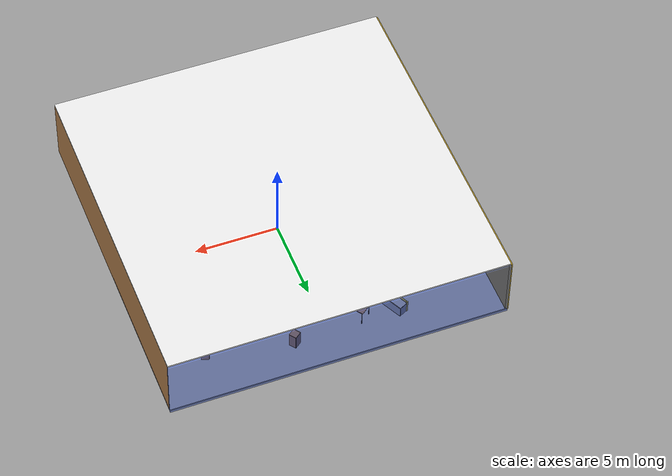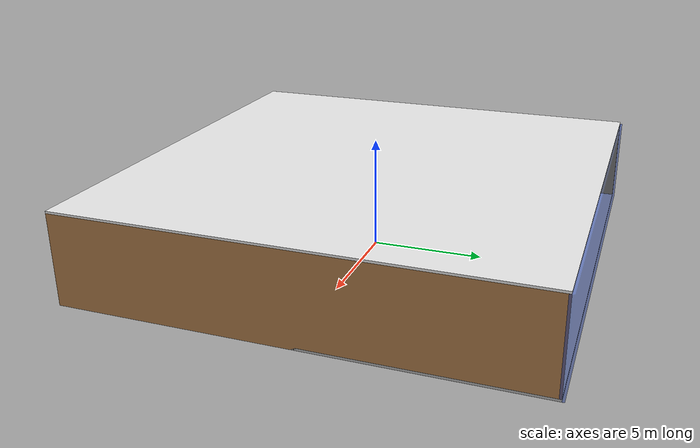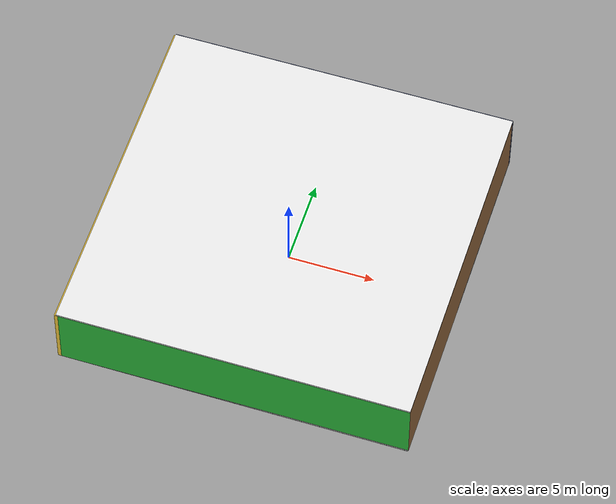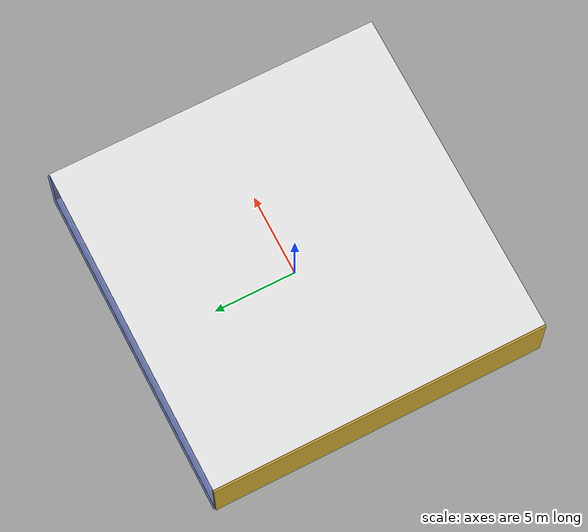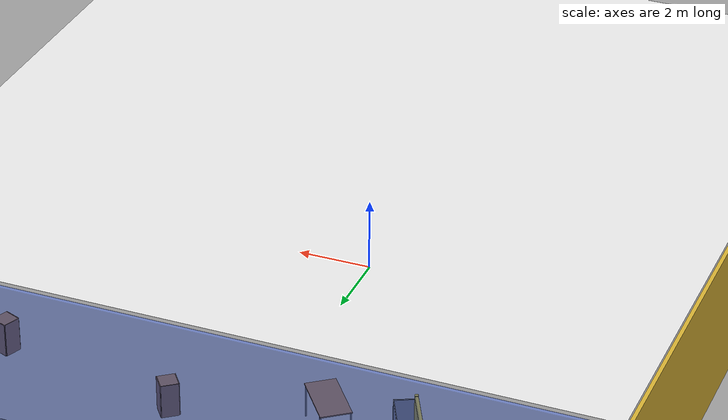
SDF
<sdf version="1.4">
 <world name="default">
  <physics type="ode">
   <max_step_size>0.001</max_step_size>
   <real_time_factor>1</real_time_factor>
   <real_time_update_rate>1000</real_time_update_rate>
   <gravity>0 0 -9.8</gravity>
  </physics>
  <scene><ambient>0.4 0.4 0.4 1</ambient><background>0.7 0.7 0.7 1</background><shadows>1</shadows></scene>
  <model name="Surrounding">
   <static>1</static>
   <link name="Ceiling">
    <collision name="Ceiling_Collision"><geometry><box><size>20 20 0.1</size></box></geometry></collision>
    <visual name="Ceiling_Visual">
     <geometry><box><size>20 20 0.1</size></box></geometry>
     <material>
      <script><uri>file://media/materials/scripts/gazebo.material</uri><name>Gazebo/WhiteGlow</name></script>
     </material>
    </visual>
    <pose>0 0 4.05 0 0 0</pose>
   </link>
   <link name="Wall_South">
    <collision name="Wall_South_Collision">
     <geometry><box><size>20 0 4</size></box></geometry>
     <pose>0 0 2 0 -0 0</pose>
    </collision>
    <visual name="Wall_South_Visual">
     <pose>0 0 2 0 -0 0</pose>
     <geometry><box><size>20 0 4</size></box></geometry>
     <material>
      <script><uri>file://media/materials/scripts/gazebo.material</uri><name>Gazebo/GreenGlow</name></script>
     </material>
    </visual>
    <velocity_decay><linear>0</linear><angular>0</angular></velocity_decay>
    <pose>0 -10 0 0 -0 0</pose>
   </link>
   <link name="Wall_East">
    <collision name="Wall_21_Collision">
     <geometry><box><size>20 0 4</size></box></geometry>
     <pose>0 0 2 0 -0 0</pose>
    </collision>
    <visual name="Wall_21_Visual">
     <pose>0 0 2 0 -0 0</pose>
     <geometry><box><size>20 0 4</size></box></geometry>
     <material>
      <script><uri>file://media/materials/scripts/gazebo.material</uri><name>Gazebo/WoodFloor</name></script>
     </material>
    </visual>
    <velocity_decay><linear>0</linear><angular>0</angular></velocity_decay>
    <pose>10 0 0 0 -0 1.5708</pose>
   </link>
   <link name="Wall_North">
    <collision name="Wall_22_Collision">
     <geometry><box><size>20 0.2 4</size></box></geometry>
     <pose>0 0 2 0 -0 0</pose>
    </collision>
    <visual name="Wall_22_Visual">
     <pose>0 0 2 0 -0 0</pose>
     <geometry><box><size>20 0.2 4</size></box></geometry>
     <material>
      <script><uri>file://media/materials/scripts/gazebo.material</uri><name>Gazebo/BlueTransparent</name></script>
     </material>
    </visual>
    <velocity_decay><linear>0</linear><angular>0</angular></velocity_decay>
    <pose>0 10 0 0 -0 0</pose>
   </link>
   <link name="Wall_West">
    <collision name="Wall_23_Collision">
     <geometry><box><size>20 0.2 4</size></box></geometry>
     <pose>0 0 2 0 -0 0</pose>
    </collision>
    <visual name="Wall_23_Visual">
     <pose>0 0 2 0 -0 0</pose>
     <geometry><box><size>20 0.2 4</size></box></geometry>
     <material>
      <script><uri>file://media/materials/scripts/gazebo.material</uri><name>Gazebo/Gold</name></script>
     </material>
    </visual>
    <velocity_decay><linear>0</linear><angular>0</angular></velocity_decay>
    <pose>-10 0 0 0 0 -1.5708</pose>
   </link>
   <link name="Ground_link">
    <collision name="collision">
     <pose>0 0 .05 0 -0 0</pose>
     <geometry><box><size>20 20 0.1</size></box></geometry>
    </collision>
    <visual name="visual">
     <pose>0 0 .05 0 -0 0</pose>
     <geometry><box><size>20 20 0.1</size></box></geometry>
     <material>
      <script><uri>file://media/materials/scripts/gazebo.material</uri><name>Gazebo/LightOff</name></script>
     </material>
    </visual>
   </link>
   <static>1</static>
  </model>
  <spherical_coordinates>
   <surface_model>EARTH_WGS84</surface_model>
   <latitude_deg>0</latitude_deg>
   <longitude_deg>0</longitude_deg>
   <elevation>0</elevation>
   <heading_deg>0</heading_deg>
  </spherical_coordinates>
  <light name="lightball_0" type="diffuse">
   <diffuse>0.8 0.8 0.8 1</diffuse>
   <specular>0.2 0.2 0.2 1</specular>
   <attenuation>
    <range>100</range>
    <constant>0.7</constant>
    <linear>0.01</linear>
    <quadratic>0.001</quadratic>
   </attenuation>
   <direction>-0.5 0.1 -0.9</direction>
   <pose>6.20733055664 -8.18353514371 2.31500896675 0 0 0</pose>
  </light>
  <light name="lightball_1" type="diffuse">
   <diffuse>0.8 0.8 0.8 1</diffuse>
   <specular>0.2 0.2 0.2 1</specular>
   <attenuation>
    <range>100</range>
    <constant>0.7</constant>
    <linear>0.01</linear>
    <quadratic>0.001</quadratic>
   </attenuation>
   <direction>-0.5 0.1 -0.9</direction>
   <pose>3.17761211663 -9.30182266241 0.719399558362 0 0 0</pose>
  </light>
  <light name="lightball_2" type="diffuse">
   <diffuse>0.8 0.8 0.8 1</diffuse>
   <specular>0.2 0.2 0.2 1</specular>
   <attenuation>
    <range>100</range>
    <constant>0.7</constant>
    <linear>0.01</linear>
    <quadratic>0.001</quadratic>
   </attenuation>
   <direction>-0.5 0.1 -0.9</direction>
   <pose>4.57719909963 3.50678921517 3.84404526484 0 0 0</pose>
  </light>
  <light name="lightball_3" type="diffuse">
   <diffuse>0.8 0.8 0.8 1</diffuse>
   <specular>0.2 0.2 0.2 1</specular>
   <attenuation>
    <range>100</range>
    <constant>0.7</constant>
    <linear>0.01</linear>
    <quadratic>0.001</quadratic>
   </attenuation>
   <direction>-0.5 0.1 -0.9</direction>
   <pose>6.24256492197 1.10457337666 0.73191109036 0 0 0</pose>
  </light>
  <light name="lightball_4" type="diffuse">
   <diffuse>0.8 0.8 0.8 1</diffuse>
   <specular>0.2 0.2 0.2 1</specular>
   <attenuation>
    <range>100</range>
    <constant>0.7</constant>
    <linear>0.01</linear>
    <quadratic>0.001</quadratic>
   </attenuation>
   <direction>-0.5 0.1 -0.9</direction>
   <pose>7.59234013204 9.63164107112 1.93978269722 0 0 0</pose>
  </light>
  <light name="lightball_5" type="diffuse">
   <diffuse>0.8 0.8 0.8 1</diffuse>
   <specular>0.2 0.2 0.2 1</specular>
   <attenuation>
    <range>100</range>
    <constant>0.7</constant>
    <linear>0.01</linear>
    <quadratic>0.001</quadratic>
   </attenuation>
   <direction>-0.5 0.1 -0.9</direction>
   <pose>-6.79561564863 6.11836255487 2.6565354264 0 0 0</pose>
  </light>
  <light name="lightball_6" type="diffuse">
   <diffuse>0.8 0.8 0.8 1</diffuse>
   <specular>0.2 0.2 0.2 1</specular>
   <attenuation>
    <range>100</range>
    <constant>0.7</constant>
    <linear>0.01</linear>
    <quadratic>0.001</quadratic>
   </attenuation>
   <direction>-0.5 0.1 -0.9</direction>
   <pose>4.05748513424 7.32161454835 0.528670117322 0 0 0</pose>
  </light>
  <light name="lightball_7" type="diffuse">
   <diffuse>0.8 0.8 0.8 1</diffuse>
   <specular>0.2 0.2 0.2 1</specular>
   <attenuation>
    <range>100</range>
    <constant>0.7</constant>
    <linear>0.01</linear>
    <quadratic>0.001</quadratic>
   </attenuation>
   <direction>-0.5 0.1 -0.9</direction>
   <pose>0.102722171447 5.36613285563 1.20867252827 0 0 0</pose>
  </light>
  <light name="lightball_8" type="diffuse">
   <diffuse>0.8 0.8 0.8 1</diffuse>
   <specular>0.2 0.2 0.2 1</specular>
   <attenuation>
    <range>100</range>
    <constant>0.7</constant>
    <linear>0.01</linear>
    <quadratic>0.001</quadratic>
   </attenuation>
   <direction>-0.5 0.1 -0.9</direction>
   <pose>-5.50089639061 8.37636618998 1.55229602855 0 0 0</pose>
  </light>
  <light name="lightball_9" type="diffuse">
   <diffuse>0.8 0.8 0.8 1</diffuse>
   <specular>0.2 0.2 0.2 1</specular>
   <attenuation>
    <range>100</range>
    <constant>0.7</constant>
    <linear>0.01</linear>
    <quadratic>0.001</quadratic>
   </attenuation>
   <direction>-0.5 0.1 -0.9</direction>
   <pose>8.69991129964 0.861876644953 3.5701245332 0 0 0</pose>
  </light>
  <include>
   <uri>model://robocup_3Dsim_goal</uri>
   <pose>-4.21399000459 7.25742428503 0 0 0 0.463673728651</pose>
  </include>
  <include><uri>model://table</uri><pose>-1.75588278542 -7.56736047988 0 0 0 1.72448472522</pose></include>
  <include><uri>model://table</uri><pose>-1.52184274595 -4.29097148089 0 0 0 2.55882574097</pose></include>
  <include><uri>model://table</uri><pose>-1.87307374003 7.37798176147 0 0 0 2.22578210076</pose></include>
  <include>
   <uri>model://robocup_3Dsim_goal</uri>
   <pose>1.50336794968 0.774876751119 0 0 0 2.52228008679</pose>
  </include>
  <include><uri>model://cabinet</uri><pose>2.02152927459 8.15945340228 0 0 0 2.22450319314</pose></include>
  <include><uri>model://cabinet</uri><pose>7.19778557723 0.937142977343 0 0 0 0.632805828914</pose></include>
  <include><uri>model://cabinet</uri><pose>6.9566117441 7.22198723789 0 0 0 2.76823507199</pose></include>
 </world>
</sdf>

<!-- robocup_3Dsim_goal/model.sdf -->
<sdf version="1.5">
  <model name="robocup_3d_goal">
    <static>true</static>
    <link name="left_post">
      <pose>0 1.05 0.45 0 0 0</pose>
      <collision name="collision">
        <geometry>
          <cylinder>
            <radius>0.05</radius>
            <length>0.9</length>
          </cylinder>
        </geometry>
      </collision>
      <visual name="visual">
        <geometry>
          <cylinder>
            <radius>0.05</radius>
            <length>0.9</length>
          </cylinder>
        </geometry>
        <material>
          <script>
            <uri>file://media/materials/scripts/gazebo.material</uri>
            <name>Gazebo/ZincYellow</name>
          </script>
        </material>
      </visual>
    </link>
    <link name="left_support_horiz_lower">
      <pose>0.30 1.05 0.01 0 0 0</pose>
      <collision name="collision">
        <geometry>
          <box>
            <size>0.50 0.02 0.02</size>
          </box>
        </geometry>
      </collision>
      <visual name="visual">
        <geometry>
          <box>
            <size>0.50 0.02 0.02</size>
          </box>
        </geometry>
        <material>
          <script>
            <uri>file://media/materials/scripts/gazebo.material</uri>
            <name>Gazebo/White</name>
          </script>
        </material>
      </visual>
    </link>
    <link name="left_support_horiz_upper">
      <pose>0.30 1.05 0.79 0 0 0</pose>
      <collision name="collision">
        <geometry>
          <box>
            <size>0.50 0.02 0.02</size>
          </box>
        </geometry>
      </collision>
      <visual name="visual">
        <geometry>
          <box>
            <size>0.50 0.02 0.02</size>
          </box>
        </geometry>
        <material>
          <script>
            <uri>file://media/materials/scripts/gazebo.material</uri>
            <name>Gazebo/White</name>
          </script>
        </material>
      </visual>
    </link>
    <link name="left_support_vertical">
      <pose>0.56 1.05 0.4 0 1.5708 0</pose>
      <collision name="collision">
        <geometry>
          <box>
            <size>0.80 0.02 0.02</size>
          </box>
        </geometry>
      </collision>
      <visual name="visual">
        <geometry>
          <box>
            <size>0.80 0.02 0.02</size>
          </box>
        </geometry>
        <material>
          <script>
            <uri>file://media/materials/scripts/gazebo.material</uri>
            <name>Gazebo/White</name>
          </script>
        </material>
      </visual>
    </link>
    <link name="right_support_horiz_lower">
      <pose>0.30 -1.05 0.01 0 0 0</pose>
      <collision name="collision">
        <geometry>
          <box>
            <size>0.50 0.02 0.02</size>
          </box>
        </geometry>
      </collision>
      <visual name="visual">
        <geometry>
          <box>
            <size>0.50 0.02 0.02</size>
          </box>
        </geometry>
        <material>
          <script>
            <uri>file://media/materials/scripts/gazebo.material</uri>
            <name>Gazebo/White</name>
          </script>
        </material>
      </visual>
    </link>
    <link name="right_support_horiz_upper">
      <pose>0.30 -1.05 0.79 0 0 0</pose>
      <collision name="collision">
        <geometry>
          <box>
            <size>0.50 0.02 0.02</size>
          </box>
        </geometry>
      </collision>
      <visual name="visual">
        <geometry>
          <box>
            <size>0.50 0.02 0.02</size>
          </box>
        </geometry>
        <material>
          <script>
            <uri>file://media/materials/scripts/gazebo.material</uri>
            <name>Gazebo/White</name>
          </script>
        </material>
      </visual>
    </link>
    <link name="right_support_vertical">
      <pose>0.56 -1.05 0.4 0 1.5708 0</pose>
      <collision name="collision">
        <geometry>
          <box>
            <size>0.80 0.02 0.02</size>
          </box>
        </geometry>
      </collision>
      <visual name="visual">
        <geometry>
          <box>
            <size>0.80 0.02 0.02</size>
          </box>
        </geometry>
        <material>
          <script>
            <uri>file://media/materials/scripts/gazebo.material</uri>
            <name>Gazebo/White</name>
          </script>
        </material>
      </visual>
    </link>
    <link name="center_support_horiz_lower">
      <pose>0.56 0 0.01 0 1.5708 0</pose>
      <collision name="collision">
        <geometry>
          <box>
            <size>0.02 2.08 0.02</size>
          </box>
        </geometry>
      </collision>
      <visual name="visual">
        <geometry>
          <box>
            <size>0.02 2.08 0.02</size>
          </box>
        </geometry>
        <material>
          <script>
            <uri>file://media/materials/scripts/gazebo.material</uri>
            <name>Gazebo/White</name>
          </script>
        </material>
      </visual>
    </link>
    <link name="center_support_horiz_upper">
      <pose>0.56 0 0.79 0 1.5708 0</pose>
      <collision name="collision">
        <geometry>
          <box>
            <size>0.02 2.08 0.02</size>
          </box>
        </geometry>
      </collision>
      <visual name="visual">
        <geometry>
          <box>
            <size>0.02 2.08 0.02</size>
          </box>
        </geometry>
        <material>
          <script>
            <uri>file://media/materials/scripts/gazebo.material</uri>
            <name>Gazebo/White</name>
          </script>
        </material>
      </visual>
    </link>
    <link name="right_post">
      <pose>0 -1.05 0.45 0 0 0</pose>
      <collision name="collision">
        <geometry>
          <cylinder>
            <radius>0.05</radius>
            <length>0.9</length>
          </cylinder>
        </geometry>
      </collision>
      <visual name="visual">
        <geometry>
          <cylinder>
            <radius>0.05</radius>
            <length>0.9</length>
          </cylinder>
        </geometry>
        <material>
          <script>
            <uri>file://media/materials/scripts/gazebo.material</uri>
            <name>Gazebo/ZincYellow</name>
          </script>
        </material>
      </visual>
    </link>
    <link name="crossbar">
      <pose>0 0 0.85 1.57 1.57 0</pose>
      <collision name="collision">
        <geometry>
          <cylinder>
            <radius>0.05</radius>
            <length>2.0</length>
          </cylinder>
        </geometry>
      </collision>
      <visual name="visual">
        <geometry>
          <cylinder>
            <radius>0.05</radius>
            <length>2.0</length>
          </cylinder>
        </geometry>
        <material>
          <script>
            <uri>file://media/materials/scripts/gazebo.material</uri>
            <name>Gazebo/ZincYellow</name>
          </script>
        </material>
      </visual>
    </link>
    <link name="center_net">
      <pose>0.56 0 0.40 0 0 0</pose>
      <collision name="collision">
        <geometry>
          <box>
            <size>0.01 2.1 0.80</size>
          </box>
        </geometry>
      </collision>
      <visual name="visual">
        <geometry>
          <box>
            <size>0.01 2.1 0.80</size>
          </box>
        </geometry>
        <material>
          <script>
            <uri>model://../model_source/models/robocup09_spl_field/materials/scripts/</uri>
            <uri>model://../model_source/models/robocup09_spl_field/materials/textures/</uri>
            <name>RoboCup/Net</name>
          </script>
        </material>
      </visual>
    </link>
    <link name="left_net">
      <pose>0.30 1.05 0.40 0 0 0</pose>
      <collision name="collision">
        <geometry>
          <box>
            <size>0.50 0.01 0.76</size>
          </box>
        </geometry>
      </collision>
      <visual name="visual">
        <geometry>
          <box>
            <size>0.50 0.01 0.76</size>
          </box>
        </geometry>
        <material>
          <script>
            <uri>model://../model_source/models/robocup09_spl_field/materials/scripts/</uri>
            <uri>model://../model_source/models/robocup09_spl_field/materials/textures/</uri>
            <name>RoboCup/Net</name>
          </script>
        </material>
      </visual>
    </link>
    <link name="right_net">
      <pose>0.30 -1.05 0.40 0 0 0</pose>
      <collision name="collision">
        <geometry>
          <box>
            <size>0.50 0.01 0.76</size>
          </box>
        </geometry>
      </collision>
      <visual name="visual">
        <geometry>
          <box>
            <size>0.50 0.01 0.76</size>
          </box>
        </geometry>
        <material>
          <script>
            <uri>model://../model_source/models/robocup09_spl_field/materials/scripts/</uri>
            <uri>model://../model_source/models/robocup09_spl_field/materials/textures/</uri>
            <name>RoboCup/Net</name>
          </script>
        </material>
      </visual>
    </link>
  </model>
</sdf>

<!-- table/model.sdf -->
<sdf version="1.5">
  <model name="table">
    <static>true</static>
    <link name="link">
      <collision name="surface">
        <pose>0 0 1.0 0 0 0</pose>
        <geometry>
          <box>
            <size>1.5 0.8 0.03</size>
          </box>
        </geometry>
        <surface>
          <friction>
            <ode>
              <mu>0.6</mu>
              <mu2>0.6</mu2>
            </ode>
          </friction>
        </surface>
      </collision>
      <visual name="visual1">
        <pose>0 0 1.0 0 0 0</pose>
        <geometry>
          <box>
            <size>1.5 0.8 0.03</size>
          </box>
        </geometry>
        <material>
          <script>
            <uri>model://media/materials/scripts/gazebo.material</uri>
            <name>Gazebo/Wood</name>
          </script>
        </material>
      </visual>
      <collision name="front_left_leg">
        <pose>0.68 0.38 0.5 0 0 0</pose>
        <geometry>
          <cylinder>
            <radius>0.02</radius>
            <length>1.0</length>
          </cylinder>
        </geometry>
      </collision>
      <visual name="front_left_leg">
        <pose>0.68 0.38 0.5 0 0 0</pose>
        <geometry>
          <cylinder>
            <radius>0.02</radius>
            <length>1.0</length>
          </cylinder>
        </geometry>
        <material>
          <script>
            <uri>model://media/materials/scripts/gazebo.material</uri>
            <name>Gazebo/Grey</name>
          </script>
        </material>
      </visual>
      <collision name="front_right_leg">
        <pose>0.68 -0.38 0.5 0 0 0</pose>
        <geometry>
          <cylinder>
            <radius>0.02</radius>
            <length>1.0</length>
          </cylinder>
        </geometry>
      </collision>
      <visual name="front_right_leg">
        <pose>0.68 -0.38 0.5 0 0 0</pose>
        <geometry>
          <cylinder>
            <radius>0.02</radius>
            <length>1.0</length>
          </cylinder>
        </geometry>
        <material>
          <script>
            <uri>model://media/materials/scripts/gazebo.material</uri>
            <name>Gazebo/Grey</name>
          </script>
        </material>
      </visual>
      <collision name="back_right_leg">
        <pose>-0.68 -0.38 0.5 0 0 0</pose>
        <geometry>
          <cylinder>
            <radius>0.02</radius>
            <length>1.0</length>
          </cylinder>
        </geometry>
      </collision>
      <visual name="back_right_leg">
        <pose>-0.68 -0.38 0.5 0 0 0</pose>
        <geometry>
          <cylinder>
            <radius>0.02</radius>
            <length>1.0</length>
          </cylinder>
        </geometry>
        <material>
          <script>
            <uri>model://media/materials/scripts/gazebo.material</uri>
            <name>Gazebo/Grey</name>
          </script>
        </material>
      </visual>
      <collision name="back_left_leg">
        <pose>-0.68 0.38 0.5 0 0 0</pose>
        <geometry>
          <cylinder>
            <radius>0.02</radius>
            <length>1.0</length>
          </cylinder>
        </geometry>
      </collision>
      <visual name="back_left_leg">
        <pose>-0.68 0.38 0.5 0 0 0</pose>
        <geometry>
          <cylinder>
            <radius>0.02</radius>
            <length>1.0</length>
          </cylinder>
        </geometry>
        <material>
          <script>
            <uri>model://media/materials/scripts/gazebo.material</uri>
            <name>Gazebo/Grey</name>
          </script>
        </material>
      </visual>
    </link>
  </model>
</sdf>

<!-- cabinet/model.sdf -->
<sdf version="1.5">
  <model name="cabinet">
    <static>true</static>
    <link name="cabinet_bottom_plate">
      <inertial>
        <pose>0 0 -1 0 0 0</pose>
        <inertia>
          <ixx>2.050000</ixx>
          <ixy>0</ixy>
          <ixz>0</ixz>
          <iyy>2.050000</iyy>
          <iyz>0</iyz>
          <izz>2.050000</izz>
        </inertia>
        <mass>25.000000</mass>
      </inertial>
      <collision name="cabinet_bottom_plate_geom">
        <pose>0 0 0.010000 0 0 0</pose>
        <geometry>
          <box>
            <size>0.450000 0.450000 0.020000</size>
          </box>
        </geometry>
      </collision>
      <visual name="cabinet_bottom_plate_geom_visual">
        <pose>0 0 0.010000 0 0 0</pose>
        <geometry>
          <box>
            <size>0.450000 0.450000 0.020000</size>
          </box>
        </geometry>
        <material>
          <script>
            <uri>model://media/materials/scripts/gazebo.material</uri>
            <name>Gazebo/Wood</name>
          </script>
        </material>
      </visual>
      <collision name="cabinet_bottom_plate_geom_cabinet_back_plate">
        <pose>0.235000 0 0.510000 0 0 0</pose>
        <geometry>
          <box>
            <size>0.020000 0.450000 1.020000</size>
          </box>
        </geometry>
      </collision>
      <visual name="cabinet_bottom_plate_geom_cabinet_back_plate_visual">
        <pose>0.235000 0 0.510000 0 0 0</pose>
        <geometry>
          <box>
            <size>0.020000 0.450000 1.020000</size>
          </box>
        </geometry>
        <material>
          <script>
            <uri>model://media/materials/scripts/gazebo.material</uri>
            <name>Gazebo/Wood</name>
          </script>
        </material>
      </visual>
      <collision name="cabinet_bottom_plate_geom_cabinet_left_plate">
        <pose>0 0.235000 0.510000 0 0 0</pose>
        <geometry>
          <box>
            <size>0.450000 0.020000 1.020000</size>
          </box>
        </geometry>
      </collision>
      <visual name="cabinet_bottom_plate_geom_cabinet_left_plate_visual">
        <pose>0 0.235000 0.510000 0 0 0</pose>
        <geometry>
          <box>
            <size>0.450000 0.020000 1.020000</size>
          </box>
        </geometry>
        <material>
          <script>
            <uri>model://media/materials/scripts/gazebo.material</uri>
            <name>Gazebo/Wood</name>
          </script>
        </material>
      </visual>
      <collision name="cabinet_bottom_plate_geom_cabinet_middle_plate">
        <pose>0 0 0.510000 0 0 0</pose>
        <geometry>
          <box>
            <size>0.450000 0.450000 0.020000</size>
          </box>
        </geometry>
      </collision>
      <visual name="cabinet_bottom_plate_geom_cabinet_middle_plate_visual">
        <pose>0 0 0.510000 0 0 0</pose>
        <geometry>
          <box>
            <size>0.450000 0.450000 0.020000</size>
          </box>
        </geometry>
        <material>
          <script>
            <uri>model://media/materials/scripts/gazebo.material</uri>
            <name>Gazebo/Wood</name>
          </script>
        </material>
      </visual>
      <collision name="cabinet_bottom_plate_geom_cabinet_right_plate">
        <pose>0 -0.235000 0.510000 0 0 0</pose>
        <geometry>
          <box>
            <size>0.450000 0.020000 1.020000</size>
          </box>
        </geometry>
      </collision>
      <visual name="cabinet_bottom_plate_geom_cabinet_right_plate_visual">
        <pose>0 -0.235000 0.510000 0 0 0</pose>
        <geometry>
          <box>
            <size>0.450000 0.020000 1.020000</size>
          </box>
        </geometry>
        <material>
          <script>
            <uri>model://media/materials/scripts/gazebo.material</uri>
            <name>Gazebo/Wood</name>
          </script>
        </material>
      </visual>
      <collision name="cabinet_bottom_plate_geom_cabinet_top_plate">
        <pose>0 0 1.010000 0 0 0</pose>
        <geometry>
          <box>
            <size>0.450000 0.450000 0.020000</size>
          </box>
        </geometry>
      </collision>
      <visual name="cabinet_bottom_plate_geom_cabinet_top_plate_visual">
        <pose>0 0 1.010000 0 0 0</pose>
        <geometry>
          <box>
            <size>0.450000 0.450000 0.020000</size>
          </box>
        </geometry>
        <material>
          <script>
            <uri>model://media/materials/scripts/gazebo.material</uri>
            <name>Gazebo/Wood</name>
          </script>
        </material>
      </visual>
    </link>
  </model>
</sdf>
